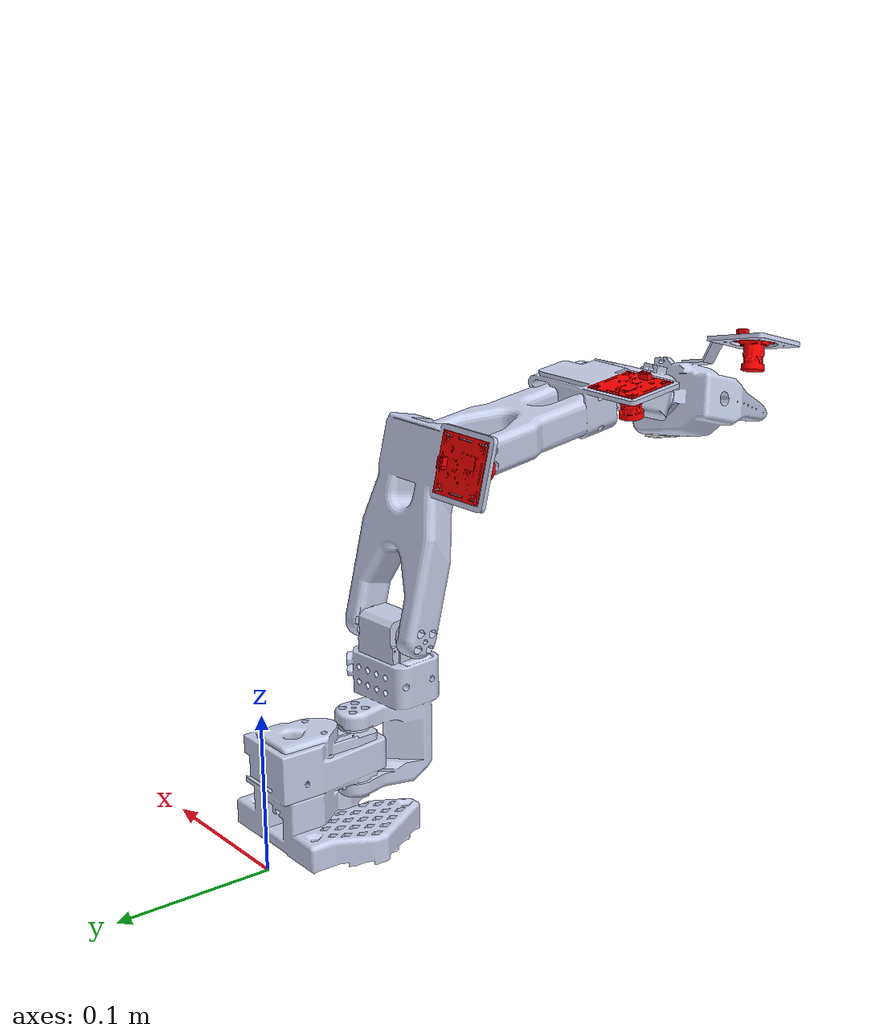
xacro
<?xml version="1.0" encoding="utf-8"?>

<robot xmlns:xacro="http://www.ros.org/wiki/xacro" name="digital_twin">

  <!-- ==================== ROS2 CONTROL BLOCK ==================== -->
  <ros2_control name="RobotSystem" type="system">
    <hardware>
      <plugin>gz_ros2_control/GazeboSimSystem</plugin>
    </hardware>

    <joint name="joint_0">
      <command_interface name="position"/>
      <state_interface name="position"/>
      <state_interface name="velocity"/>
    </joint>

    <joint name="joint_1">
      <command_interface name="position"/>
      <state_interface name="position"/>
      <state_interface name="velocity"/>
    </joint>

    <joint name="joint_2">
      <command_interface name="position"/>
      <state_interface name="position"/>
      <state_interface name="velocity"/>
    </joint>

    <joint name="joint_3">
      <command_interface name="position"/>
      <state_interface name="position"/>
      <state_interface name="velocity"/>
    </joint>

    <joint name="joint_4">
      <command_interface name="position"/>
      <state_interface name="position"/>
      <state_interface name="velocity"/>
    </joint>

    <joint name="joint_5">
      <command_interface name="position"/>
      <state_interface name="position"/>
      <state_interface name="velocity"/>
    </joint>
  </ros2_control>

  <!-- ==================== ROBOT STRUCTURE (from original) ==================== -->
  <link name = "base_link"/>
  <link
    name="base">
    <inertial>
      <origin
        xyz="0.0289665748459923 -0.0563386381862514 0.0257898952415849"
        rpy="0 0 0" />
      <mass
        value="0.182638453025953" />
      <inertia
        ixx="0.000138502730797721"
        ixy="5.13155858445536E-07"
        ixz="-2.43327941158306E-09"
        iyy="0.000149708916054179"
        iyz="-2.12768663741834E-05"
        izz="0.00017574420518952" />
    </inertial>
    <visual>
      <origin
        xyz="0 0 0"
        rpy="0 0 0" />
      <geometry>
        <mesh
          filename="package://digital_twin/meshes_2/base.STL" />
      </geometry>
      <material
        name="">
        <color
          rgba="0.792156862745098 0.819607843137255 0.933333333333333 1" />
      </material>
    </visual>
    <collision>
      <origin
        xyz="0 0 0"
        rpy="0 0 0" />
      <geometry>
        <mesh
          filename="package://digital_twin/meshes_2/base.STL" />
      </geometry>
    </collision>
  </link>
  <link
    name="rotator">
    <inertial>
      <origin
        xyz="0.030196 0.05726 -0.0076233"
        rpy="0 0 0" />
      <mass
        value="0.11834" />
      <inertia
        ixx="5.8117E-05"
        ixy="-4.4778E-06"
        ixz="5.0777E-07"
        iyy="3.2325E-05"
        iyz="7.7073E-07"
        izz="5.9598E-05" />
    </inertial>
    <visual>
      <origin
        xyz="0 0 0"
        rpy="0 0 0" />
      <geometry>
        <mesh
          filename="package://digital_twin/meshes_2/rotator.STL" />
      </geometry>
      <material
        name="">
        <color
          rgba="0.79216 0.81961 0.93333 1" />
      </material>
    </visual>
    <collision>
      <origin
        xyz="0 0 0"
        rpy="0 0 0" />
      <geometry>
        <mesh
          filename="package://digital_twin/meshes_2/rotator.STL" />
      </geometry>
    </collision>
  </link>
  <joint
    name="joint_0"
    type="revolute">
    <origin
      xyz="0.029071 -0.083383 0.015488"
      rpy="1.5708 0 -1.7156" />
    <parent
      link="base" />
    <child
      link="rotator" />
    <axis
      xyz="0 1 0" />
    <limit
      lower="-2.243"
      upper="1.827"
      effort="10"
      velocity="10" />
  </joint>
  <link
    name="under_arm">
    <inertial>
      <origin
        xyz="0.0725714453367885 -0.00247226941528854 -0.01757972470484"
        rpy="0 0 0" />
      <mass
        value="0.161381394011792" />
      <inertia
        ixx="7.02120145779093E-05"
        ixy="-1.95289891929553E-06"
        ixz="1.99351680099217E-05"
        iyy="0.000195698407340443"
        iyz="5.94149495075594E-07"
        izz="0.000148087906093691" />
    </inertial>
    <visual>
      <origin
        xyz="0 0 0"
        rpy="0 0 0" />
      <geometry>
        <mesh
          filename="package://digital_twin/meshes_2/under_arm.STL" />
      </geometry>
      <material
        name="">
        <color
          rgba="0.792156862745098 0.819607843137255 0.933333333333333 1" />
      </material>
    </visual>
    <collision>
      <origin
        xyz="0 0 0"
        rpy="0 0 0" />
      <geometry>
        <mesh
          filename="package://digital_twin/meshes_2/under_arm.STL" />
      </geometry>
    </collision>
  </link>
  <joint
    name="joint_1"
    type="revolute">
    <origin
      xyz="0.029629 0.10044 -0.007646"
      rpy="0.24808 -0.18094 1.258" />
    <parent
      link="rotator" />
    <child
      link="under_arm" />
    <axis
      xyz="0.24987 0 0.96828" />
    <limit
      lower="-1.418"
      upper="2.08"
      effort="10"
      velocity="10" />
  </joint>
  <link
    name="camera_1">
    <inertial>
      <origin
        xyz="-0.014807 2.7562E-05 -0.00029683"
        rpy="0 0 0" />
      <mass
        value="5.4945E-06" />
      <inertia
        ixx="5.7915E-10"
        ixy="1.3338E-13"
        ixz="2.1746E-13"
        iyy="3.3324E-10"
        iyz="-8.499E-13"
        izz="3.3686E-10" />
    </inertial>
    <visual>
      <origin
        xyz="0 0 0"
        rpy="0 0 0" />
      <geometry>
        <mesh
          filename="package://digital_twin/meshes_2/camera_1.STL" />
      </geometry>
      <material
        name="">
        <color
          rgba="1 0 0 1" />
      </material>
    </visual>
    <collision>
      <origin
        xyz="0 0 0"
        rpy="0 0 0" />
      <geometry>
        <mesh
          filename="package://digital_twin/meshes_2/camera_1.STL" />
      </geometry>
    </collision>
  </link>
  <joint
    name="fixed_camera_1"
    type="fixed">
    <origin
      xyz="0.12006 -0.0058453 0.020345"
      rpy="-0.25255 0 -1.5708" />
    <parent
      link="under_arm" />
    <child
      link="camera_1" />
    <axis
      xyz="0 0 0" />
  </joint>
  <link
    name="upper_arm">
    <inertial>
      <origin
        xyz="0.076621 0.0021483 -0.018362"
        rpy="0 0 0" />
      <mass
        value="0.14968" />
      <inertia
        ixx="5.765E-05"
        ixy="1.6107E-06"
        ixz="1.2433E-05"
        iyy="0.00013933"
        iyz="-4.0154E-07"
        izz="9.8735E-05" />
    </inertial>
    <visual>
      <origin
        xyz="0 0 0"
        rpy="0 0 0" />
      <geometry>
        <mesh
          filename="package://digital_twin/meshes_2/upper_arm.STL" />
      </geometry>
      <material
        name="">
        <color
          rgba="0.79216 0.81961 0.93333 1" />
      </material>
    </visual>
    <collision>
      <origin
        xyz="0 0 0"
        rpy="0 0 0" />
      <geometry>
        <mesh
          filename="package://digital_twin/meshes_2/upper_arm.STL" />
      </geometry>
    </collision>
  </link>
  <joint
    name="joint_2"
    type="revolute">
    <origin
      xyz="0.109 -0.028 -0.028128"
      rpy="-0.2406 -0.16097 -1.1768" />
    <parent
      link="under_arm" />
    <child
      link="upper_arm" />
    <axis
      xyz="0.24987 0 0.96828" />
    <limit
      lower="-1.927"
      upper="1.147"
      effort="10"
      velocity="10" />
  </joint>
  <link
    name="camera_2">
    <inertial>
      <origin
        xyz="-0.014807 0.00029683 2.7563E-05"
        rpy="0 0 0" />
      <mass
        value="5.4945E-06" />
      <inertia
        ixx="5.7915E-10"
        ixy="-2.1746E-13"
        ixz="1.3339E-13"
        iyy="3.3686E-10"
        iyz="8.499E-13"
        izz="3.3324E-10" />
    </inertial>
    <visual>
      <origin
        xyz="0 0 0"
        rpy="0 0 0" />
      <geometry>
        <mesh
          filename="package://digital_twin/meshes_2/camera_2.STL" />
      </geometry>
      <material
        name="">
        <color
          rgba="1 0 0 1" />
      </material>
    </visual>
    <collision>
      <origin
        xyz="0 0 0"
        rpy="0 0 0" />
      <geometry>
        <mesh
          filename="package://digital_twin/meshes_2/camera_2.STL" />
      </geometry>
    </collision>
  </link>
  <joint
    name="fixed_camera_2"
    type="fixed">
    <origin
      xyz="0.11427 0.0027547 0.023802"
      rpy="-0.25255 0 -1.5708" />
    <parent
      link="upper_arm" />
    <child
      link="camera_2" />
    <axis
      xyz="0 0 0" />
  </joint>
  <link
    name="EE_rotator">
    <inertial>
      <origin
        xyz="0.032137 -0.0028891 -0.016038"
        rpy="0 0 0" />
      <mass
        value="0.068528" />
      <inertia
        ixx="2.4982E-05"
        ixy="6.4371E-07"
        ixz="3.1762E-07"
        iyy="3.3722E-05"
        iyz="-3.1393E-07"
        izz="1.8312E-05" />
    </inertial>
    <visual>
      <origin
        xyz="0 0 0"
        rpy="0 0 0" />
      <geometry>
        <mesh
          filename="package://digital_twin/meshes_2/EE_rotator.STL" />
      </geometry>
      <material
        name="">
        <color
          rgba="0.79216 0.81961 0.93333 1" />
      </material>
    </visual>
    <collision>
      <origin
        xyz="0 0 0"
        rpy="0 0 0" />
      <geometry>
        <mesh
          filename="package://digital_twin/meshes_2/EE_rotator.STL" />
      </geometry>
    </collision>
  </link>
  <joint
    name="joint_3"
    type="revolute">
    <origin
      xyz="0.13062 0.0052 -0.033708"
      rpy="-0.077908 -0.012035 -0.30637" />
    <parent
      link="upper_arm" />
    <child
      link="EE_rotator" />
    <axis
      xyz="0.24987 0 0.96828" />
    <limit
      lower="-1.168"
      upper="2"
      effort="10"
      velocity="10" />
  </joint>
  <link
    name="EE">
    <inertial>
      <origin
        xyz="0.046674 -0.0032136 0.040821"
        rpy="0 0 0" />
      <mass
        value="0.096482" />
      <inertia
        ixx="4.1163E-05"
        ixy="1.244E-06"
        ixz="-8.1312E-06"
        iyy="5.0998E-05"
        iyz="-7.485E-07"
        izz="3.2241E-05" />
    </inertial>
    <visual>
      <origin
        xyz="0 0 0"
        rpy="0 0 0" />
      <geometry>
        <mesh
          filename="package://digital_twin/meshes_2/EE.STL" />
      </geometry>
      <material
        name="">
        <color
          rgba="0.79216 0.81961 0.93333 1" />
      </material>
    </visual>
    <collision>
      <origin
        xyz="0 0 0"
        rpy="0 0 0" />
      <geometry>
        <mesh
          filename="package://digital_twin/meshes_2/EE.STL" />
      </geometry>
    </collision>
  </link>
  <joint
    name="joint_4"
    type="revolute">
    <origin
      xyz="0.025128 -0.0022682 -0.0063813"
      rpy="-0.12297 0.85988 -0.072346" />
    <parent
      link="EE_rotator" />
    <child
      link="EE" />
    <axis
      xyz="0.82051 -0.087161 0.56495" />
    <limit
      lower="-2.0"
      upper="2.4"
      effort="10"
      velocity="10" />
  </joint>
  <link
    name="camera_3">
    <inertial>
      <origin
        xyz="-0.014807 -0.00029684 -2.7564E-05"
        rpy="0 0 0" />
      <mass
        value="5.4945E-06" />
      <inertia
        ixx="5.7915E-10"
        ixy="2.1744E-13"
        ixz="-1.3339E-13"
        iyy="3.3686E-10"
        iyz="8.4993E-13"
        izz="3.3324E-10" />
    </inertial>
    <visual>
      <origin
        xyz="0 0 0"
        rpy="0 0 0" />
      <geometry>
        <mesh
          filename="package://digital_twin/meshes_2/camera_3.STL" />
      </geometry>
      <material
        name="">
        <color
          rgba="1 0 0 1" />
      </material>
    </visual>
    <collision>
      <origin
        xyz="0 0 0"
        rpy="0 0 0" />
      <geometry>
        <mesh
          filename="package://digital_twin/meshes_2/camera_3.STL" />
      </geometry>
    </collision>
  </link>
  <joint
    name="fixed_camera_3"
    type="fixed">
    <origin
      xyz="0.022265 0.021474 0.078641"
      rpy="0.60199 -0.068773 -1.7238" />
    <parent
      link="EE" />
    <child
      link="camera_3" />
    <axis
      xyz="0 0 0" />
  </joint>
  <link
    name="moving_leg">
    <inertial>
      <origin
        xyz="-0.0015742 -0.030012 0.00047621"
        rpy="0 0 0" />
      <mass
        value="0.020687" />
      <inertia
        ixx="1.1396E-05"
        ixy="-5.5103E-07"
        ixz="-1.0164E-08"
        iyy="3.2597E-06"
        iyz="-1.8887E-07"
        izz="9.1077E-06" />
    </inertial>
    <visual>
      <origin
        xyz="0 0 0"
        rpy="0 0 0" />
      <geometry>
        <mesh
          filename="package://digital_twin/meshes_2/moving_leg.STL" />
      </geometry>
      <material
        name="">
        <color
          rgba="0.96471 0.96471 0.95294 1" />
      </material>
    </visual>
    <collision>
      <origin
        xyz="0 0 0"
        rpy="0 0 0" />
      <geometry>
        <mesh
          filename="package://digital_twin/meshes_2/moving_leg.STL" />
      </geometry>
    </collision>
  </link>
  <joint
    name="joint_5"
    type="revolute">
    <origin
      xyz="0.05911 -0.007971 0.016426"
      rpy="-1.696 0.98819 -0.25774" />
    <parent
      link="EE" />
    <child
      link="moving_leg" />
    <axis
      xyz="0 0 1" />
    <limit
      lower="-0.178"
      upper="1.555"
      effort="10"
      velocity="10" />
  </joint>
  <joint name="virtual_joint" type="fixed">
    <parent link="base_link"/>
    <child link="base"/>
    <origin xyz="0 0 0" rpy="0 0 0"/>
  </joint>

  <link name="camera_1_optical"/>

  <joint name="optics" type="fixed">
    <parent link="camera_1"/>
    <child link="camera_1_optical"/>
    <origin xyz="0 0 0" rpy="0 0 0" />
  </joint>

  <gazebo reference="camera_1">
    <sensor name="wideangle_camera" type="camera">
      <camera>
        <horizontal_fov>3.14</horizontal_fov>
        <image>
          <width>640</width>
          <height>480</height>
        </image>
        <clip>
          <near>0.1</near>
          <far>15</far>
        </clip>
        <optical_frame_id>camera_1_optical</optical_frame_id>
        <camera_info_topic>camera/camera_info</camera_info_topic>
      </camera>
      <always_on>1</always_on>
      <visualize>true</visualize>
      <update_rate>20</update_rate>
      <topic>camera/image_raw</topic>
      <gz_frame_id>camera_1</gz_frame_id>
    </sensor>
  </gazebo>

</robot>
